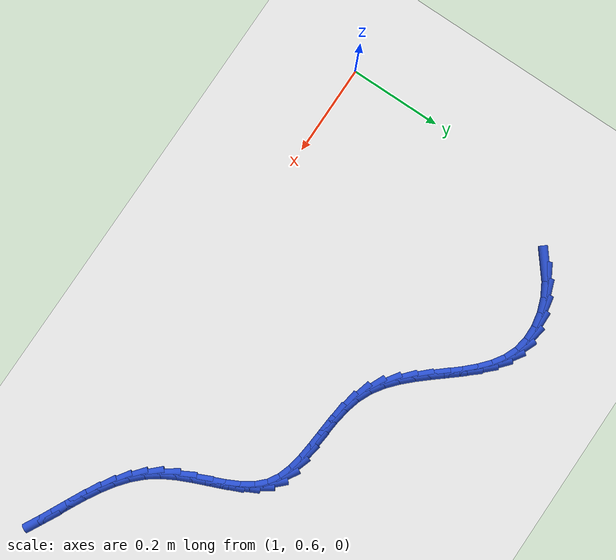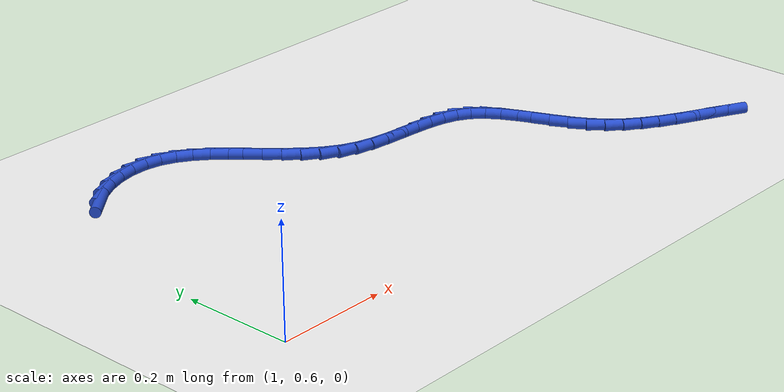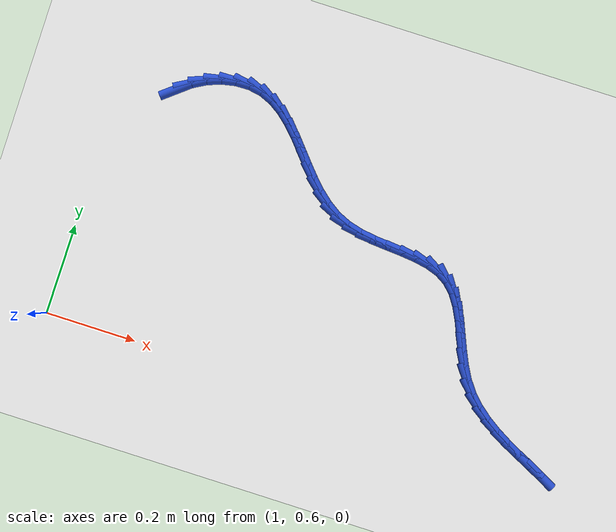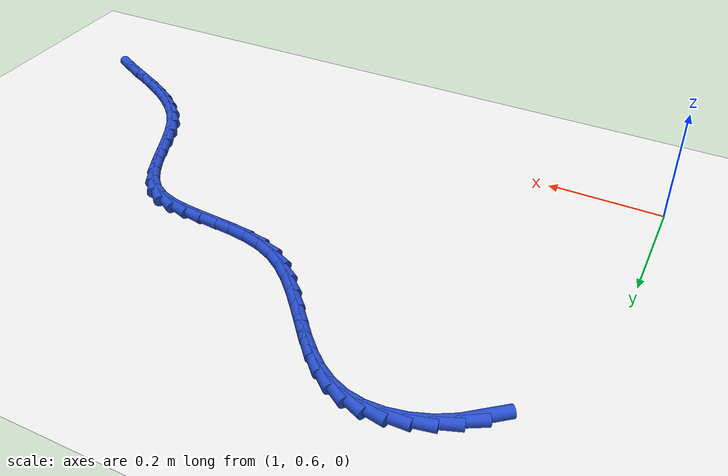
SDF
<sdf version="1.6">
 <world name="default">
  <model name="ground_plane">
   <static>1</static>
   <link name="link">
    <collision name="collision">
     <geometry><plane><normal>0 0 1</normal><size>100 100</size></plane></geometry>
     <surface><friction><ode><mu>100</mu><mu2>50</mu2></ode></friction></surface>
    </collision>
    <visual name="visual">
     <cast_shadows>0</cast_shadows>
     <geometry><plane><normal>0 0 1</normal><size>100 100</size></plane></geometry>
     <material>
      <script><uri>file://media/materials/scripts/gazebo.material</uri><name>Gazebo/WhiteGlow</name></script>
     </material>
    </visual>
   </link>
  </model>
  <model name="line">
   <link name="link_60">
    <pose>1.1211140865175273 1.1470749770534152 0.01 0 1.57 0.6794930536122161</pose>
    <collision name="collision">
     <geometry><cylinder><radius>0.01</radius><length>0.08</length></cylinder></geometry>
    </collision>
    <visual name="visual">
     <material>
      <script><name>Gazebo/Blue</name><uri>file://media/materials/scripts/gazebo.material</uri></script>
     </material>
     <geometry><cylinder><radius>0.01</radius><length>0.08</length></cylinder></geometry>
    </visual>
   </link>
   <link name="link_61">
    <pose>1.1471403100011786 1.1680995658362752 0.01 0 1.57 0.5137155923379565</pose>
    <collision name="collision">
     <geometry><cylinder><radius>0.01</radius><length>0.08</length></cylinder></geometry>
    </collision>
    <visual name="visual">
     <material>
      <script><name>Gazebo/Blue</name><uri>file://media/materials/scripts/gazebo.material</uri></script>
     </material>
     <geometry><cylinder><radius>0.01</radius><length>0.08</length></cylinder></geometry>
    </visual>
   </link>
   <link name="link_62">
    <pose>1.1762054827580577 1.1844995033195724 0.01 0 1.57 0.35469567531681545</pose>
    <collision name="collision">
     <geometry><cylinder><radius>0.01</radius><length>0.08</length></cylinder></geometry>
    </collision>
    <visual name="visual">
     <material>
      <script><name>Gazebo/Blue</name><uri>file://media/materials/scripts/gazebo.material</uri></script>
     </material>
     <geometry><cylinder><radius>0.01</radius><length>0.08</length></cylinder></geometry>
    </visual>
   </link>
   <link name="link_63">
    <pose>1.2071242221961391 1.1959505375174388 0.01 0 1.57 0.1934412882357219</pose>
    <collision name="collision">
     <geometry><cylinder><radius>0.01</radius><length>0.08</length></cylinder></geometry>
    </collision>
    <visual name="visual">
     <material>
      <script><name>Gazebo/Blue</name><uri>file://media/materials/scripts/gazebo.material</uri></script>
     </material>
     <geometry><cylinder><radius>0.01</radius><length>0.08</length></cylinder></geometry>
    </visual>
   </link>
   <link name="link_64">
    <pose>1.2386991099109264 1.2021357670863846 0.01 0 1.57 0.01941275150891111</pose>
    <collision name="collision">
     <geometry><cylinder><radius>0.01</radius><length>0.08</length></cylinder></geometry>
    </collision>
    <visual name="visual">
     <material>
      <script><name>Gazebo/Blue</name><uri>file://media/materials/scripts/gazebo.material</uri></script>
     </material>
     <geometry><cylinder><radius>0.01</radius><length>0.08</length></cylinder></geometry>
    </visual>
   </link>
   <link name="link_65">
    <pose>1.2697327274979264 1.2027382906829194 0.01 0 1.57 -0.17883881847039568</pose>
    <collision name="collision">
     <geometry><cylinder><radius>0.01</radius><length>0.08</length></cylinder></geometry>
    </collision>
    <visual name="visual">
     <material>
      <script><name>Gazebo/Blue</name><uri>file://media/materials/scripts/gazebo.material</uri></script>
     </material>
     <geometry><cylinder><radius>0.01</radius><length>0.08</length></cylinder></geometry>
    </visual>
   </link>
   <link name="link_66">
    <pose>1.2990291138567835 1.197442378517554 0.01 0 1.57 -0.39389775208190275</pose>
    <collision name="collision">
     <geometry><cylinder><radius>0.01</radius><length>0.08</length></cylinder></geometry>
    </collision>
    <visual name="visual">
     <material>
      <script><name>Gazebo/Blue</name><uri>file://media/materials/scripts/gazebo.material</uri></script>
     </material>
     <geometry><cylinder><radius>0.01</radius><length>0.08</length></cylinder></geometry>
    </visual>
   </link>
   <link name="link_67">
    <pose>1.3258457947921805 1.186296867389118 0.01 0 1.57 -0.576917578937118</pose>
    <collision name="collision">
     <geometry><cylinder><radius>0.01</radius><length>0.08</length></cylinder></geometry>
    </collision>
    <visual name="visual">
     <material>
      <script><name>Gazebo/Blue</name><uri>file://media/materials/scripts/gazebo.material</uri></script>
     </material>
     <geometry><cylinder><radius>0.01</radius><length>0.08</length></cylinder></geometry>
    </visual>
   </link>
   <link name="link_68">
    <pose>1.3505344379945867 1.1702301951830496 0.01 0 1.57 -0.7124037963171842</pose>
    <collision name="collision">
     <geometry><cylinder><radius>0.01</radius><length>0.08</length></cylinder></geometry>
    </collision>
    <visual name="visual">
     <material>
      <script><name>Gazebo/Blue</name><uri>file://media/materials/scripts/gazebo.material</uri></script>
     </material>
     <geometry><cylinder><radius>0.01</radius><length>0.08</length></cylinder></geometry>
    </visual>
   </link>
   <link name="link_69">
    <pose>1.3736084221562475 1.150300802277817 0.01 0 1.57 -0.8024180156804753</pose>
    <collision name="collision">
     <geometry><cylinder><radius>0.01</radius><length>0.08</length></cylinder></geometry>
    </collision>
    <visual name="visual">
     <material>
      <script><name>Gazebo/Blue</name><uri>file://media/materials/scripts/gazebo.material</uri></script>
     </material>
     <geometry><cylinder><radius>0.01</radius><length>0.08</length></cylinder></geometry>
    </visual>
   </link>
   <link name="link_70">
    <pose>1.3955811259694093 1.127567129051889 0.01 0 1.57 -0.852771395001808</pose>
    <collision name="collision">
     <geometry><cylinder><radius>0.01</radius><length>0.08</length></cylinder></geometry>
    </collision>
    <visual name="visual">
     <material>
      <script><name>Gazebo/Blue</name><uri>file://media/materials/scripts/gazebo.material</uri></script>
     </material>
     <geometry><cylinder><radius>0.01</radius><length>0.08</length></cylinder></geometry>
    </visual>
   </link>
   <link name="link_71">
    <pose>1.4169659281263167 1.1030876158837333 0.01 0 1.57 -0.868187551532088</pose>
    <collision name="collision">
     <geometry><cylinder><radius>0.01</radius><length>0.08</length></cylinder></geometry>
    </collision>
    <visual name="visual">
     <material>
      <script><name>Gazebo/Blue</name><uri>file://media/materials/scripts/gazebo.material</uri></script>
     </material>
     <geometry><cylinder><radius>0.01</radius><length>0.08</length></cylinder></geometry>
    </visual>
   </link>
   <link name="link_72">
    <pose>1.4382762073192166 1.0779207031518199 0.01 0 1.57 -0.850762782956271</pose>
    <collision name="collision">
     <geometry><cylinder><radius>0.01</radius><length>0.08</length></cylinder></geometry>
    </collision>
    <visual name="visual">
     <material>
      <script><name>Gazebo/Blue</name><uri>file://media/materials/scripts/gazebo.material</uri></script>
     </material>
     <geometry><cylinder><radius>0.01</radius><length>0.08</length></cylinder></geometry>
    </visual>
   </link>
   <link name="link_73">
    <pose>1.4600253422403542 1.0531248312346158 0.01 0 1.57 -0.79983288287618</pose>
    <collision name="collision">
     <geometry><cylinder><radius>0.01</radius><length>0.08</length></cylinder></geometry>
    </collision>
    <visual name="visual">
     <material>
      <script><name>Gazebo/Blue</name><uri>file://media/materials/scripts/gazebo.material</uri></script>
     </material>
     <geometry><cylinder><radius>0.01</radius><length>0.08</length></cylinder></geometry>
    </visual>
   </link>
   <link name="link_74">
    <pose>1.4827267115819764 1.0297584405105893 0.01 0 1.57 -0.7125231092848645</pose>
    <collision name="collision">
     <geometry><cylinder><radius>0.01</radius><length>0.08</length></cylinder></geometry>
    </collision>
    <visual name="visual">
     <material>
      <script><name>Gazebo/Blue</name><uri>file://media/materials/scripts/gazebo.material</uri></script>
     </material>
     <geometry><cylinder><radius>0.01</radius><length>0.08</length></cylinder></geometry>
    </visual>
   </link>
   <link name="link_75">
    <pose>1.5068936940363278 1.0088799713582102 0.01 0 1.57 -0.585388804675232</pose>
    <collision name="collision">
     <geometry><cylinder><radius>0.01</radius><length>0.08</length></cylinder></geometry>
    </collision>
    <visual name="visual">
     <material>
      <script><name>Gazebo/Blue</name><uri>file://media/materials/scripts/gazebo.material</uri></script>
     </material>
     <geometry><cylinder><radius>0.01</radius><length>0.08</length></cylinder></geometry>
    </visual>
   </link>
   <link name="link_76">
    <pose>1.5330396682956549 0.9915478641559462 0.01 0 1.57 -0.4194120932250192</pose>
    <collision name="collision">
     <geometry><cylinder><radius>0.01</radius><length>0.08</length></cylinder></geometry>
    </collision>
    <visual name="visual">
     <material>
      <script><name>Gazebo/Blue</name><uri>file://media/materials/scripts/gazebo.material</uri></script>
     </material>
     <geometry><cylinder><radius>0.01</radius><length>0.08</length></cylinder></geometry>
    </visual>
   </link>
   <link name="link_77">
    <pose>1.5616590536586246 0.9787874080629291 0.01 0 1.57 -0.2593375815803751</pose>
    <collision name="collision">
     <geometry><cylinder><radius>0.01</radius><length>0.08</length></cylinder></geometry>
    </collision>
    <visual name="visual">
     <material>
      <script><name>Gazebo/Blue</name><uri>file://media/materials/scripts/gazebo.material</uri></script>
     </material>
     <geometry><cylinder><radius>0.01</radius><length>0.08</length></cylinder></geometry>
    </visual>
   </link>
   <link name="link_78">
    <pose>1.5926419726446042 0.9705672563816908 0.01 0 1.57 -0.15143713851932095</pose>
    <collision name="collision">
     <geometry><cylinder><radius>0.01</radius><length>0.08</length></cylinder></geometry>
    </collision>
    <visual name="visual">
     <material>
      <script><name>Gazebo/Blue</name><uri>file://media/materials/scripts/gazebo.material</uri></script>
     </material>
     <geometry><cylinder><radius>0.01</radius><length>0.08</length></cylinder></geometry>
    </visual>
   </link>
   <link name="link_79">
    <pose>1.6251627205069497 0.9656044112686553 0.01 0 1.57 -0.09196378979248848</pose>
    <collision name="collision">
     <geometry><cylinder><radius>0.01</radius><length>0.08</length></cylinder></geometry>
    </collision>
    <visual name="visual">
     <material>
      <script><name>Gazebo/Blue</name><uri>file://media/materials/scripts/gazebo.material</uri></script>
     </material>
     <geometry><cylinder><radius>0.01</radius><length>0.08</length></cylinder></geometry>
    </visual>
   </link>
   <link name="link_80">
    <pose>1.6583541262209462 0.9625433695190554 0.01 0 1.57 -0.07606902193979613</pose>
    <collision name="collision">
     <geometry><cylinder><radius>0.01</radius><length>0.08</length></cylinder></geometry>
    </collision>
    <visual name="visual">
     <material>
      <script><name>Gazebo/Blue</name><uri>file://media/materials/scripts/gazebo.material</uri></script>
     </material>
     <geometry><cylinder><radius>0.01</radius><length>0.08</length></cylinder></geometry>
    </visual>
   </link>
   <link name="link_81">
    <pose>1.69134901876188 0.9600286279281255 0.01 0 1.57 -0.10372347198887674</pose>
    <collision name="collision">
     <geometry><cylinder><radius>0.01</radius><length>0.08</length></cylinder></geometry>
    </collision>
    <visual name="visual">
     <material>
      <script><name>Gazebo/Blue</name><uri>file://media/materials/scripts/gazebo.material</uri></script>
     </material>
     <geometry><cylinder><radius>0.01</radius><length>0.08</length></cylinder></geometry>
    </visual>
   </link>
   <link name="link_82">
    <pose>1.723280227105036 0.9567046832910988 0.01 0 1.57 -0.18095166411996252</pose>
    <collision name="collision">
     <geometry><cylinder><radius>0.01</radius><length>0.08</length></cylinder></geometry>
    </collision>
    <visual name="visual">
     <material>
      <script><name>Gazebo/Blue</name><uri>file://media/materials/scripts/gazebo.material</uri></script>
     </material>
     <geometry><cylinder><radius>0.01</radius><length>0.08</length></cylinder></geometry>
    </visual>
   </link>
   <link name="link_83">
    <pose>1.7532805802257003 0.9512160324032101 0.01 0 1.57 -0.319811096342936</pose>
    <collision name="collision">
     <geometry><cylinder><radius>0.01</radius><length>0.08</length></cylinder></geometry>
    </collision>
    <visual name="visual">
     <material>
      <script><name>Gazebo/Blue</name><uri>file://media/materials/scripts/gazebo.material</uri></script>
     </material>
     <geometry><cylinder><radius>0.01</radius><length>0.08</length></cylinder></geometry>
    </visual>
   </link>
   <link name="link_84">
    <pose>1.780482907099159 0.9422071720596927 0.01 0 1.57 -0.5329211066232714</pose>
    <collision name="collision">
     <geometry><cylinder><radius>0.01</radius><length>0.08</length></cylinder></geometry>
    </collision>
    <visual name="visual">
     <material>
      <script><name>Gazebo/Blue</name><uri>file://media/materials/scripts/gazebo.material</uri></script>
     </material>
     <geometry><cylinder><radius>0.01</radius><length>0.08</length></cylinder></geometry>
    </visual>
   </link>
   <link name="link_85">
    <pose>1.8040206808023926 0.9283234710823451 0.01 0 1.57 -0.786267947462315</pose>
    <collision name="collision">
     <geometry><cylinder><radius>0.01</radius><length>0.08</length></cylinder></geometry>
    </collision>
    <visual name="visual">
     <material>
      <script><name>Gazebo/Blue</name><uri>file://media/materials/scripts/gazebo.material</uri></script>
     </material>
     <geometry><cylinder><radius>0.01</radius><length>0.08</length></cylinder></geometry>
    </visual>
   </link>
   <link name="link_86">
    <pose>1.8234830478301578 0.9088272184594736 0.01 0 1.57 -0.9790093792275554</pose>
    <collision name="collision">
     <geometry><cylinder><radius>0.01</radius><length>0.08</length></cylinder></geometry>
    </collision>
    <visual name="visual">
     <material>
      <script><name>Gazebo/Blue</name><uri>file://media/materials/scripts/gazebo.material</uri></script>
     </material>
     <geometry><cylinder><radius>0.01</radius><length>0.08</length></cylinder></geometry>
    </visual>
   </link>
   <link name="link_87">
    <pose>1.8397138932869133 0.8846794495223201 0.01 0 1.57 -1.098960619112175</pose>
    <collision name="collision">
     <geometry><cylinder><radius>0.01</radius><length>0.08</length></cylinder></geometry>
    </collision>
    <visual name="visual">
     <material>
      <script><name>Gazebo/Blue</name><uri>file://media/materials/scripts/gazebo.material</uri></script>
     </material>
     <geometry><cylinder><radius>0.01</radius><length>0.08</length></cylinder></geometry>
    </visual>
   </link>
   <link name="link_88">
    <pose>1.853771208993774 0.8571310711332232 0.01 0 1.57 -1.159831938851119</pose>
    <collision name="collision">
     <geometry><cylinder><radius>0.01</radius><length>0.08</length></cylinder></geometry>
    </collision>
    <visual name="visual">
     <material>
      <script><name>Gazebo/Blue</name><uri>file://media/materials/scripts/gazebo.material</uri></script>
     </material>
     <geometry><cylinder><radius>0.01</radius><length>0.08</length></cylinder></geometry>
    </visual>
   </link>
   <link name="link_89">
    <pose>1.8667129867718557 0.8274329901545214 0.01 0 1.57 -1.1722367865172105</pose>
    <collision name="collision">
     <geometry><cylinder><radius>0.01</radius><length>0.08</length></cylinder></geometry>
    </collision>
    <visual name="visual">
     <material>
      <script><name>Gazebo/Blue</name><uri>file://media/materials/scripts/gazebo.material</uri></script>
     </material>
     <geometry><cylinder><radius>0.01</radius><length>0.08</length></cylinder></geometry>
    </visual>
   </link>
   <link name="link_90">
    <pose>1.8795972184422751 0.7968361134485545 0.01 0 1.57 -1.140419624426863</pose>
    <collision name="collision">
     <geometry><cylinder><radius>0.01</radius><length>0.08</length></cylinder></geometry>
    </collision>
    <visual name="visual">
     <material>
      <script><name>Gazebo/Blue</name><uri>file://media/materials/scripts/gazebo.material</uri></script>
     </material>
     <geometry><cylinder><radius>0.01</radius><length>0.08</length></cylinder></geometry>
    </visual>
   </link>
   <link name="link_91">
    <pose>1.8934818958261475 0.7665913478776608 0.01 0 1.57 -1.0628702563807881</pose>
    <collision name="collision">
     <geometry><cylinder><radius>0.01</radius><length>0.08</length></cylinder></geometry>
    </collision>
    <visual name="visual">
     <material>
      <script><name>Gazebo/Blue</name><uri>file://media/materials/scripts/gazebo.material</uri></script>
     </material>
     <geometry><cylinder><radius>0.01</radius><length>0.08</length></cylinder></geometry>
    </visual>
   </link>
   <link name="link_92">
    <pose>1.9094250107445885 0.7379496003041794 0.01 0 1.57 -0.9362865586724899</pose>
    <collision name="collision">
     <geometry><cylinder><radius>0.01</radius><length>0.08</length></cylinder></geometry>
    </collision>
    <visual name="visual">
     <material>
      <script><name>Gazebo/Blue</name><uri>file://media/materials/scripts/gazebo.material</uri></script>
     </material>
     <geometry><cylinder><radius>0.01</radius><length>0.08</length></cylinder></geometry>
    </visual>
   </link>
   <link name="link_93">
    <pose>1.9284400900815828 0.7121154658395582 0.01 0 1.57 -0.7954403564444568</pose>
    <collision name="collision">
     <geometry><cylinder><radius>0.01</radius><length>0.08</length></cylinder></geometry>
    </collision>
    <visual name="visual">
     <material>
      <script><name>Gazebo/Blue</name><uri>file://media/materials/scripts/gazebo.material</uri></script>
     </material>
     <geometry><cylinder><radius>0.01</radius><length>0.08</length></cylinder></geometry>
    </visual>
   </link>
   <link name="link_94">
    <pose>1.9506931934258969 0.689410873458822 0.01 0 1.57 -0.6778523167720722</pose>
    <collision name="collision">
     <geometry><cylinder><radius>0.01</radius><length>0.08</length></cylinder></geometry>
    </collision>
    <visual name="visual">
     <material>
      <script><name>Gazebo/Blue</name><uri>file://media/materials/scripts/gazebo.material</uri></script>
     </material>
     <geometry><cylinder><radius>0.01</radius><length>0.08</length></cylinder></geometry>
    </visual>
   </link>
   <link name="link_95">
    <pose>1.9755901521543922 0.6693659484858223 0.01 0 1.57 -0.5863740071048473</pose>
    <collision name="collision">
     <geometry><cylinder><radius>0.01</radius><length>0.08</length></cylinder></geometry>
    </collision>
    <visual name="visual">
     <material>
      <script><name>Gazebo/Blue</name><uri>file://media/materials/scripts/gazebo.material</uri></script>
     </material>
     <geometry><cylinder><radius>0.01</radius><length>0.08</length></cylinder></geometry>
    </visual>
   </link>
   <link name="link_96">
    <pose>2.00250984509618 0.6514827442452616 0.01 0 1.57 -0.5200992182691503</pose>
    <collision name="collision">
     <geometry><cylinder><radius>0.01</radius><length>0.08</length></cylinder></geometry>
    </collision>
    <visual name="visual">
     <material>
      <script><name>Gazebo/Blue</name><uri>file://media/materials/scripts/gazebo.material</uri></script>
     </material>
     <geometry><cylinder><radius>0.01</radius><length>0.08</length></cylinder></geometry>
    </visual>
   </link>
   <link name="link_97">
    <pose>2.0308311510803705 0.6352633140618433 0.01 0 1.57 -0.47737110170168484</pose>
    <collision name="collision">
     <geometry><cylinder><radius>0.01</radius><length>0.08</length></cylinder></geometry>
    </collision>
    <visual name="visual">
     <material>
      <script><name>Gazebo/Blue</name><uri>file://media/materials/scripts/gazebo.material</uri></script>
     </material>
     <geometry><cylinder><radius>0.01</radius><length>0.08</length></cylinder></geometry>
    </visual>
   </link>
   <link name="link_98">
    <pose>2.059932948936073 0.6202097112602699 0.01 0 1.57 -0.45693069722691027</pose>
    <collision name="collision">
     <geometry><cylinder><radius>0.01</radius><length>0.08</length></cylinder></geometry>
    </collision>
    <visual name="visual">
     <material>
      <script><name>Gazebo/Blue</name><uri>file://media/materials/scripts/gazebo.material</uri></script>
     </material>
     <geometry><cylinder><radius>0.01</radius><length>0.08</length></cylinder></geometry>
    </visual>
   </link>
   <link name="link_99">
    <pose>2.0891941174924 0.6058239891652442 0.01 0 1.57 -0.4585255500110028</pose>
    <collision name="collision">
     <geometry><cylinder><radius>0.01</radius><length>0.08</length></cylinder></geometry>
    </collision>
    <visual name="visual">
     <material>
      <script><name>Gazebo/Blue</name><uri>file://media/materials/scripts/gazebo.material</uri></script>
     </material>
     <geometry><cylinder><radius>0.01</radius><length>0.08</length></cylinder></geometry>
    </visual>
   </link>
   <link name="link_100">
    <pose>2.117993535578461 0.5916082011014687 0.01 0 1.57 -0.4832380694866959</pose>
    <collision name="collision">
     <geometry><cylinder><radius>0.01</radius><length>0.08</length></cylinder></geometry>
    </collision>
    <visual name="visual">
     <material>
      <script><name>Gazebo/Blue</name><uri>file://media/materials/scripts/gazebo.material</uri></script>
     </material>
     <geometry><cylinder><radius>0.01</radius><length>0.08</length></cylinder></geometry>
    </visual>
   </link>
  </model>
 </world>
</sdf>
